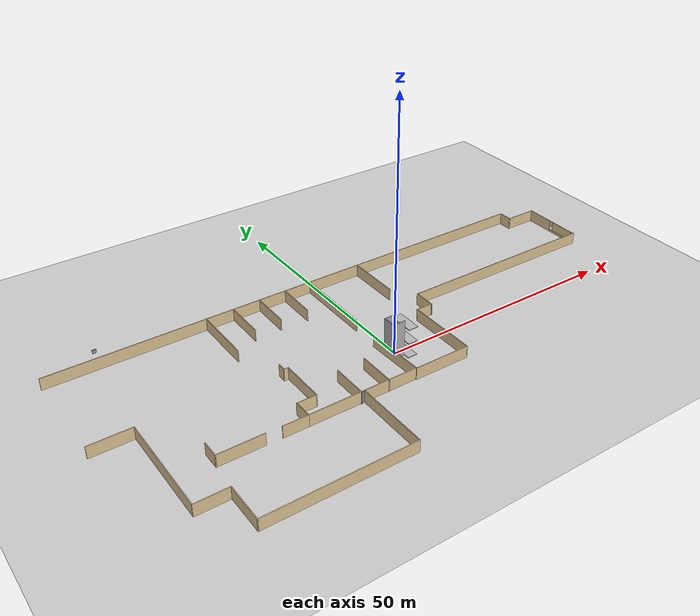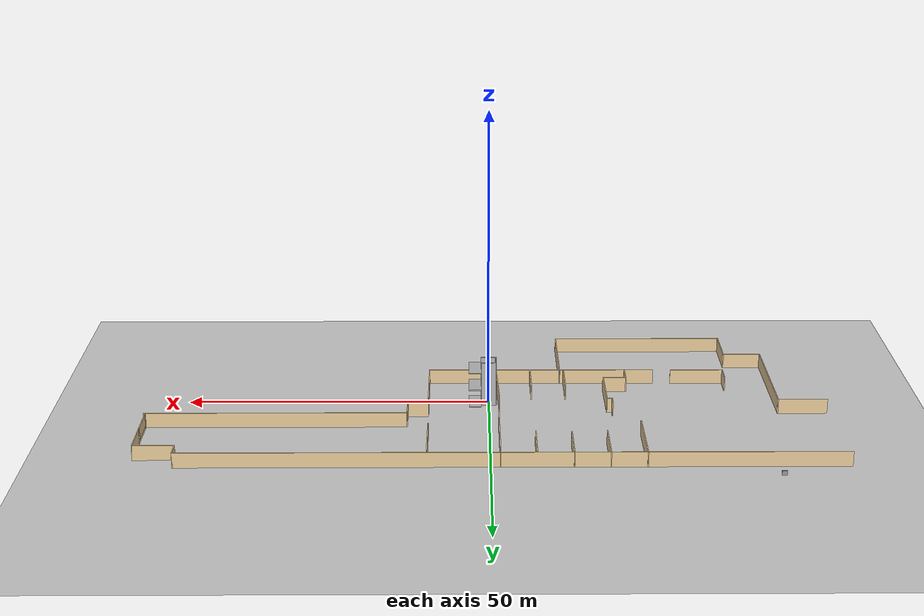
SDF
<sdf version="1.6">
 <world name="default">
  <light name="sun" type="directional">
   <pose>0 0 10 0 -0 0</pose>
   <diffuse>0.8 0.8 0.8 1</diffuse>
   <specular>0.2 0.2 0.2 1</specular>
   <attenuation>
    <range>1000</range>
    <constant>0.9</constant>
    <linear>0.01</linear>
    <quadratic>0.001</quadratic>
   </attenuation>
   <direction>-0.5 0.1 -0.9</direction>
  </light>
  <model name="ground_plane">
   <static>1</static>
   <link name="link">
    <collision name="collision">
     <geometry><plane><normal>0 0 1</normal><size>1000 1000</size></plane></geometry>
     <surface><friction><ode><mu>100</mu><mu2>50</mu2></ode></friction></surface>
    </collision>
    <visual name="visual">
     <cast_shadows>0</cast_shadows>
     <geometry><plane><normal>0 0 1</normal><size>1000 1000</size></plane></geometry>
     <material>
      <script><uri>file://media/materials/scripts/gazebo.material</uri><name>Gazebo/Grey</name></script>
     </material>
    </visual>
   </link>
  </model>
  <plugin name="elevator_event_plugin" filename="libSimEventsPlugin.so">
   <region><name>region1</name><volume><min>1.5 -1 0</min><max>2.5 1 1</max></volume></region>
   <region><name>region2</name><volume><min>1.5 -1 3</min><max>2.5 1 4</max></volume></region>
   <region><name>region3</name><volume><min>1.5 -1 6</min><max>2.5 1 7</max></volume></region>
   <event>
    <name>region1_event</name>
    <type>occupied</type>
    <region>region1</region>
    <topic>~/elevator</topic>
    <msg_data>0</msg_data>
   </event>
   <event>
    <name>region2_event</name>
    <type>occupied</type>
    <region>region2</region>
    <topic>~/elevator</topic>
    <msg_data>1</msg_data>
   </event>
   <event>
    <name>region3_event</name>
    <type>occupied</type>
    <region>region3</region>
    <topic>~/elevator</topic>
    <msg_data>2</msg_data>
   </event>
  </plugin>
  <model name="elevator">
   <pose>-0 0 0.075 -0 -0 -0</pose>
   <link name="link">
    <inertial>
     <mass>800</mass>
     <inertia><ixx>1</ixx><ixy>0</ixy><ixz>0</ixz><iyy>1</iyy><iyz>0</iyz><izz>1</izz></inertia>
    </inertial>
    <collision name="floor_collision"><geometry><box><size>2.25 2.25 0.15</size></box></geometry></collision>
    <visual name="floor_visual"><geometry><box><size>2.25 2.25 0.15</size></box></geometry></visual>
    <collision name="wall1_collision">
     <pose>1.0745 0.5725 1.125 0 -0 0</pose>
     <geometry><box><size>0.1 1.15 2.25</size></box></geometry>
    </collision>
    <visual name="wall1_visual">
     <pose>1.0745 0.5725 1.125 0 -0 0</pose>
     <geometry><box><size>0.1 1.15 2.25</size></box></geometry>
     <material><script><name>Gazebo/Red</name><uri>__default__</uri></script></material>
    </visual>
    <collision name="wall2_collision">
     <pose>1.0745 -1.0625 1.125 0 -0 0</pose>
     <geometry><box><size>0.1 0.125 2.25</size></box></geometry>
    </collision>
    <visual name="wall2_visual">
     <pose>1.0745 -1.0625 1.125 0 -0 0</pose>
     <geometry><box><size>0.1 0.125 2.25</size></box></geometry>
     <material><script><name>Gazebo/Red</name><uri>__default__</uri></script></material>
    </visual>
   </link>
   <link name="door">
    <pose>1.0745 -0.5 1.125 0 -0 0</pose>
    <collision name="collision"><geometry><box><size>0.08 1 2.25</size></box></geometry></collision>
    <visual name="visual"><geometry><box><size>0.08 1 2.25</size></box></geometry></visual>
    <inertial>
     <inertia><ixx>1</ixx><ixy>0</ixy><ixz>0</ixz><iyy>1</iyy><iyz>0</iyz><izz>1</izz></inertia>
     <mass>1</mass>
    </inertial>
   </link>
   <joint name="door" type="prismatic">
    <parent>link</parent>
    <child>door</child>
    <axis>
     <xyz>0 1 0</xyz>
     <limit><lower>0</lower><upper>1</upper><effort>10</effort></limit>
     <dynamics>
      <damping>2</damping>
      <spring_reference>0</spring_reference>
      <spring_stiffness>0</spring_stiffness>
     </dynamics>
     <use_parent_model_frame>0</use_parent_model_frame>
    </axis>
   </joint>
   <joint name="lift" type="prismatic">
    <parent>world</parent>
    <child>link</child>
    <axis>
     <xyz>0 0 1</xyz>
     <limit><lower>0</lower><upper>10</upper><effort>100000</effort></limit>
     <dynamics>
      <damping>50</damping>
      <spring_reference>0</spring_reference>
      <spring_stiffness>0</spring_stiffness>
     </dynamics>
     <use_parent_model_frame>0</use_parent_model_frame>
    </axis>
    <physics>
     <ode><implicit_spring_damper>1</implicit_spring_damper><limit><cfm>0</cfm><erp>0.2</erp></limit></ode>
    </physics>
   </joint>
   <plugin name="elevator_plugin" filename="libgazebo_ros_elevator.so">
    <lift_joint>elevator::lift</lift_joint>
    <door_joint>elevator::door</door_joint>
    <floor_height>3.075</floor_height>
    <door_wait_time>5</door_wait_time>
    <topic>elevator</topic>
   </plugin>
  </model>
  <model name="elevator_shaft">
   <static>1</static>
   <link name="link">
    <collision name="shaft_wall1_collision">
     <pose>0 1.25 3 0 -0 0</pose>
     <geometry><box><size>2.5 0.15 9</size></box></geometry>
    </collision>
    <visual name="shaft_wall1_visual">
     <pose>0 1.25 3 0 -0 0</pose>
     <geometry><box><size>2.5 0.15 9</size></box></geometry>
    </visual>
    <collision name="shaft_wall2_collision">
     <pose>0 -1.25 3 0 -0 0</pose>
     <geometry><box><size>2.5 0.15 9</size></box></geometry>
    </collision>
    <visual name="shaft_wall2_visual">
     <pose>0 -1.25 3 0 -0 0</pose>
     <geometry><box><size>2.5 0.15 9</size></box></geometry>
    </visual>
    <collision name="shaft_wall3_collision">
     <pose>-1.25 0 3 0 -0 0</pose>
     <geometry><box><size>0.15 2.7 9</size></box></geometry>
    </collision>
    <visual name="shaft_wall3_visual">
     <pose>-1.25 0 3 0 -0 0</pose>
     <geometry><box><size>0.15 2.7 9</size></box></geometry>
    </visual>
    <collision name="floor0_collision">
     <pose>1.19 0 0.075 0 -0 0</pose>
     <geometry><box><size>0.12 2.5 0.15</size></box></geometry>
    </collision>
    <visual name="floor0_visual">
     <pose>1.19 0 0.075 0 -0 0</pose>
     <geometry><box><size>0.12 2.5 0.15</size></box></geometry>
    </visual>
    <collision name="floor1_collision">
     <pose>1.19 0 3.075 0 -0 0</pose>
     <geometry><box><size>0.12 2.5 0.15</size></box></geometry>
    </collision>
    <visual name="floor1_visual">
     <pose>1.19 0 3.075 0 -0 0</pose>
     <geometry><box><size>0.12 2.5 0.15</size></box></geometry>
    </visual>
    <collision name="floor2_collision">
     <pose>1.19 0 6.075 0 -0 0</pose>
     <geometry><box><size>0.12 2.5 0.15</size></box></geometry>
    </collision>
    <visual name="floor2_visual">
     <pose>1.19 0 6.075 0 -0 0</pose>
     <geometry><box><size>0.12 2.5 0.15</size></box></geometry>
    </visual>
   </link>
  </model>
  <model name="floor0">
   <pose>2.25 0 0.075 0 -0 0</pose>
   <static>1</static>
   <link name="link">
    <collision name="floor_collision"><geometry><box><size>2 5 0.15</size></box></geometry></collision>
    <visual name="floor_visual"><geometry><box><size>2 5 0.15</size></box></geometry></visual>
   </link>
  </model>
  <model name="floor1">
   <pose>2.25 0 3.075 0 -0 0</pose>
   <static>1</static>
   <link name="link">
    <collision name="floor_collision"><geometry><box><size>2 5 0.15</size></box></geometry></collision>
    <visual name="floor_visual"><geometry><box><size>2 5 0.15</size></box></geometry></visual>
   </link>
  </model>
  <model name="floor2">
   <pose>2.25 0 6.075 0 -0 0</pose>
   <static>1</static>
   <link name="link">
    <collision name="floor_collision"><geometry><box><size>2 5 0.15</size></box></geometry></collision>
    <visual name="floor_visual"><geometry><box><size>2 5 0.15</size></box></geometry></visual>
   </link>
  </model>
  <gravity>0 0 -9.8</gravity>
  <magnetic_field>6e-06 2.3e-05 -4.2e-05</magnetic_field>
  <atmosphere type="adiabatic"/>
  <physics name="default_physics" default="0" type="ode">
   <max_step_size>0.001</max_step_size>
   <real_time_factor>1</real_time_factor>
   <real_time_update_rate>1000</real_time_update_rate>
  </physics>
  <scene><ambient>0.4 0.4 0.4 1</ambient><background>0.7 0.7 0.7 1</background><shadows>1</shadows></scene>
  <spherical_coordinates>
   <surface_model>EARTH_WGS84</surface_model>
   <latitude_deg>0</latitude_deg>
   <longitude_deg>0</longitude_deg>
   <elevation>0</elevation>
   <heading_deg>0</heading_deg>
  </spherical_coordinates>
  <model name="floor_2_woodlands_hospital">
   <pose>-0.010841 1.55364 0 0 -0 0</pose>
   <link name="Wall_10">
    <collision name="Wall_10_Collision">
     <geometry><box><size>12.2959 0.15 2.5</size></box></geometry>
     <pose>0 0 1.25 0 -0 0</pose>
    </collision>
    <visual name="Wall_10_Visual">
     <pose>0 0 1.25 0 -0 0</pose>
     <geometry><box><size>12.2959 0.15 2.5</size></box></geometry>
     <material>
      <script><uri>file://media/materials/scripts/gazebo.material</uri><name>Gazebo/Grey</name></script>
      <ambient>0.921569 0.807843 0.615686 1</ambient>
     </material>
     <meta><layer>0</layer></meta>
    </visual>
    <pose>-1.54225 -3.66367 0 0 -0 1.60595</pose>
   </link>
   <link name="Wall_12">
    <collision name="Wall_12_Collision">
     <geometry><box><size>11.25 0.15 2.5</size></box></geometry>
     <pose>0 0 1.25 0 -0 0</pose>
    </collision>
    <visual name="Wall_12_Visual">
     <pose>0 0 1.25 0 -0 0</pose>
     <geometry><box><size>11.25 0.15 2.5</size></box></geometry>
     <material>
      <script><uri>file://media/materials/scripts/gazebo.material</uri><name>Gazebo/Grey</name></script>
      <ambient>0.921569 0.807843 0.615686 1</ambient>
     </material>
     <meta><layer>0</layer></meta>
    </visual>
    <pose>-6.69931 -9.65977 0 0 -0 3.14159</pose>
   </link>
   <link name="Wall_13">
    <collision name="Wall_13_Collision">
     <geometry><box><size>15.25 0.15 2.5</size></box></geometry>
     <pose>0 0 1.25 0 -0 0</pose>
    </collision>
    <visual name="Wall_13_Visual">
     <pose>0 0 1.25 0 -0 0</pose>
     <geometry><box><size>15.25 0.15 2.5</size></box></geometry>
     <material>
      <script><uri>file://media/materials/scripts/gazebo.material</uri><name>Gazebo/Grey</name></script>
      <ambient>0.921569 0.807843 0.615686 1</ambient>
     </material>
     <meta><layer>0</layer></meta>
    </visual>
    <pose>-12.2493 -17.2098 0 0 -0 -1.5708</pose>
   </link>
   <link name="Wall_14">
    <collision name="Wall_14_Collision">
     <geometry><box><size>29.25 0.15 2.5</size></box></geometry>
     <pose>0 0 1.25 0 -0 0</pose>
    </collision>
    <visual name="Wall_14_Visual">
     <pose>0 0 1.25 0 -0 0</pose>
     <geometry><box><size>29.25 0.15 2.5</size></box></geometry>
     <material>
      <script><uri>file://media/materials/scripts/gazebo.material</uri><name>Gazebo/Grey</name></script>
      <ambient>0.921569 0.807843 0.615686 1</ambient>
     </material>
     <meta><layer>0</layer></meta>
    </visual>
    <pose>-26.7993 -24.7598 0 0 -0 3.14159</pose>
   </link>
   <link name="Wall_15">
    <collision name="Wall_15_Collision">
     <geometry><box><size>8 0.15 2.5</size></box></geometry>
     <pose>0 0 1.25 0 -0 0</pose>
    </collision>
    <visual name="Wall_15_Visual">
     <pose>0 0 1.25 0 -0 0</pose>
     <geometry><box><size>8 0.15 2.5</size></box></geometry>
     <material>
      <script><uri>file://media/materials/scripts/gazebo.material</uri><name>Gazebo/Grey</name></script>
      <ambient>0.921569 0.807843 0.615686 1</ambient>
     </material>
     <meta><layer>0</layer></meta>
    </visual>
    <pose>-41.3493 -20.8348 0 0 -0 1.5708</pose>
   </link>
   <link name="Wall_16">
    <collision name="Wall_16_Collision">
     <geometry><box><size>6.5 0.15 2.5</size></box></geometry>
     <pose>0 0 1.25 0 -0 0</pose>
    </collision>
    <visual name="Wall_16_Visual">
     <pose>0 0 1.25 0 -0 0</pose>
     <geometry><box><size>6.5 0.15 2.5</size></box></geometry>
     <material>
      <script><uri>file://media/materials/scripts/gazebo.material</uri><name>Gazebo/Grey</name></script>
      <ambient>0.921569 0.807843 0.615686 1</ambient>
     </material>
     <meta><layer>0</layer></meta>
    </visual>
    <pose>-44.5243 -16.9098 0 0 -0 3.14159</pose>
   </link>
   <link name="Wall_17">
    <collision name="Wall_17_Collision">
     <geometry><box><size>20.75 0.15 2.5</size></box></geometry>
     <pose>0 0 1.25 0 -0 0</pose>
    </collision>
    <visual name="Wall_17_Visual">
     <pose>0 0 1.25 0 -0 0</pose>
     <geometry><box><size>20.75 0.15 2.5</size></box></geometry>
     <material>
      <script><uri>file://media/materials/scripts/gazebo.material</uri><name>Gazebo/Grey</name></script>
      <ambient>0.921569 0.807843 0.615686 1</ambient>
     </material>
     <meta><layer>0</layer></meta>
    </visual>
    <pose>-47.6993 -6.60977 0 0 -0 1.5708</pose>
   </link>
   <link name="Wall_18">
    <collision name="Wall_18_Collision">
     <geometry><box><size>8.25 0.15 2.5</size></box></geometry>
     <pose>0 0 1.25 0 -0 0</pose>
    </collision>
    <visual name="Wall_18_Visual">
     <pose>0 0 1.25 0 -0 0</pose>
     <geometry><box><size>8.25 0.15 2.5</size></box></geometry>
     <material>
      <script><uri>file://media/materials/scripts/gazebo.material</uri><name>Gazebo/Grey</name></script>
      <ambient>0.921569 0.807843 0.615686 1</ambient>
     </material>
     <meta><layer>0</layer></meta>
    </visual>
    <pose>-51.7493 3.69023 0 0 -0 3.14159</pose>
   </link>
   <link name="Wall_20">
    <collision name="Wall_20_Collision">
     <geometry><box><size>7.5 0.15 2.5</size></box></geometry>
     <pose>0 0 1.25 0 -0 0</pose>
    </collision>
    <visual name="Wall_20_Visual">
     <pose>0 0 1.25 0 -0 0</pose>
     <geometry><box><size>7.5 0.15 2.5</size></box></geometry>
     <material>
      <script><uri>file://media/materials/scripts/gazebo.material</uri><name>Gazebo/Grey</name></script>
      <ambient>0.921569 0.807843 0.615686 1</ambient>
     </material>
     <meta><layer>0</layer></meta>
    </visual>
    <pose>-7.17838 -6.02053 0 0 -0 -1.5708</pose>
   </link>
   <link name="Wall_22">
    <collision name="Wall_22_Collision">
     <geometry><box><size>7.5 0.15 2.5</size></box></geometry>
     <pose>0 0 1.25 0 -0 0</pose>
    </collision>
    <visual name="Wall_22_Visual">
     <pose>0 0 1.25 0 -0 0</pose>
     <geometry><box><size>7.5 0.15 2.5</size></box></geometry>
     <material>
      <script><uri>file://media/materials/scripts/gazebo.material</uri><name>Gazebo/Grey</name></script>
      <ambient>0.921569 0.807843 0.615686 1</ambient>
     </material>
     <meta><layer>0</layer></meta>
    </visual>
    <pose>-12.9097 -6.16204 0 0 -0 -1.5708</pose>
   </link>
   <link name="Wall_23">
    <collision name="Wall_23_Collision">
     <geometry><box><size>0.833767 0.15 2.5</size></box></geometry>
     <pose>0 0 1.25 0 -0 0</pose>
    </collision>
    <visual name="Wall_23_Visual">
     <pose>0 0 1.25 0 -0 0</pose>
     <geometry><box><size>0.833767 0.15 2.5</size></box></geometry>
     <material>
      <script><uri>file://media/materials/scripts/gazebo.material</uri><name>Gazebo/Grey</name></script>
      <ambient>1 1 1 1</ambient>
     </material>
     <meta><layer>0</layer></meta>
    </visual>
    <pose>-12.5795 -9.74841 0 0 -0 0.262245</pose>
   </link>
   <link name="Wall_24">
    <collision name="Wall_24_Collision">
     <geometry><box><size>11.25 0.15 2.5</size></box></geometry>
     <pose>0 0 1.25 0 -0 0</pose>
    </collision>
    <visual name="Wall_24_Visual">
     <pose>0 0 1.25 0 -0 0</pose>
     <geometry><box><size>11.25 0.15 2.5</size></box></geometry>
     <material>
      <script><uri>file://media/materials/scripts/gazebo.material</uri><name>Gazebo/Grey</name></script>
      <ambient>0.921569 0.807843 0.615686 1</ambient>
     </material>
     <meta><layer>0</layer></meta>
    </visual>
    <pose>-17.7993 -9.65977 0 0 -0 3.14159</pose>
   </link>
   <link name="Wall_25">
    <collision name="Wall_25_Collision">
     <geometry><box><size>3.75 0.15 2.5</size></box></geometry>
     <pose>0 0 1.25 0 -0 0</pose>
    </collision>
    <visual name="Wall_25_Visual">
     <pose>0 0 1.25 0 -0 0</pose>
     <geometry><box><size>3.75 0.15 2.5</size></box></geometry>
     <material>
      <script><uri>file://media/materials/scripts/gazebo.material</uri><name>Gazebo/Grey</name></script>
      <ambient>0.921569 0.807843 0.615686 1</ambient>
     </material>
     <meta><layer>0</layer></meta>
    </visual>
    <pose>-23.3493 -7.85977 0 0 -0 1.5708</pose>
   </link>
   <link name="Wall_26">
    <collision name="Wall_26_Collision">
     <geometry><box><size>4 0.15 2.5</size></box></geometry>
     <pose>0 0 1.25 0 -0 0</pose>
    </collision>
    <visual name="Wall_26_Visual">
     <pose>0 0 1.25 0 -0 0</pose>
     <geometry><box><size>4 0.15 2.5</size></box></geometry>
     <material>
      <script><uri>file://media/materials/scripts/gazebo.material</uri><name>Gazebo/Grey</name></script>
      <ambient>0.921569 0.807843 0.615686 1</ambient>
     </material>
     <meta><layer>0</layer></meta>
    </visual>
    <pose>-21.4243 -6.05977 0 0 -0 0</pose>
   </link>
   <link name="Wall_27">
    <collision name="Wall_27_Collision">
     <geometry><box><size>9.25 0.15 2.5</size></box></geometry>
     <pose>0 0 1.25 0 -0 0</pose>
    </collision>
    <visual name="Wall_27_Visual">
     <pose>0 0 1.25 0 -0 0</pose>
     <geometry><box><size>9.25 0.15 2.5</size></box></geometry>
     <material>
      <script><uri>file://media/materials/scripts/gazebo.material</uri><name>Gazebo/Grey</name></script>
      <ambient>0.921569 0.807843 0.615686 1</ambient>
     </material>
     <meta><layer>0</layer></meta>
    </visual>
    <pose>-19.4993 -1.50977 0 0 -0 1.5708</pose>
   </link>
   <link name="Wall_28">
    <collision name="Wall_28_Collision">
     <geometry><box><size>1 0.15 2.5</size></box></geometry>
     <pose>0 0 1.25 0 -0 0</pose>
    </collision>
    <visual name="Wall_28_Visual">
     <pose>0 0 1.25 0 -0 0</pose>
     <geometry><box><size>1 0.15 2.5</size></box></geometry>
     <material>
      <script><uri>file://media/materials/scripts/gazebo.material</uri><name>Gazebo/Grey</name></script>
      <ambient>0.921569 0.807843 0.615686 1</ambient>
     </material>
     <meta><layer>0</layer></meta>
    </visual>
    <pose>-19.9243 3.04023 0 0 -0 3.14159</pose>
   </link>
   <link name="Wall_29">
    <collision name="Wall_29_Collision">
     <geometry><box><size>1.75 0.15 2.5</size></box></geometry>
     <pose>0 0 1.25 0 -0 0</pose>
    </collision>
    <visual name="Wall_29_Visual">
     <pose>0 0 1.25 0 -0 0</pose>
     <geometry><box><size>1.75 0.15 2.5</size></box></geometry>
     <material>
      <script><uri>file://media/materials/scripts/gazebo.material</uri><name>Gazebo/Grey</name></script>
      <ambient>0.921569 0.807843 0.615686 1</ambient>
     </material>
     <meta><layer>0</layer></meta>
    </visual>
    <pose>-20.3493 3.84023 0 0 -0 1.5708</pose>
   </link>
   <link name="Wall_32">
    <collision name="Wall_32_Collision">
     <geometry><box><size>5 0.15 2.5</size></box></geometry>
     <pose>0 0 1.25 0 -0 0</pose>
    </collision>
    <visual name="Wall_32_Visual">
     <pose>0 0 1.25 0 -0 0</pose>
     <geometry><box><size>5 0.15 2.5</size></box></geometry>
     <material>
      <script><uri>file://media/materials/scripts/gazebo.material</uri><name>Gazebo/Grey</name></script>
      <ambient>0.921569 0.807843 0.615686 1</ambient>
     </material>
     <meta><layer>0</layer></meta>
    </visual>
    <pose>-25.7743 -9.65977 0 0 -0 3.14159</pose>
   </link>
   <link name="Wall_34">
    <collision name="Wall_34_Collision">
     <geometry><box><size>9 0.15 2.5</size></box></geometry>
     <pose>0 0 1.25 0 -0 0</pose>
    </collision>
    <visual name="Wall_34_Visual">
     <pose>0 0 1.25 0 -0 0</pose>
     <geometry><box><size>9 0.15 2.5</size></box></geometry>
     <material>
      <script><uri>file://media/materials/scripts/gazebo.material</uri><name>Gazebo/Grey</name></script>
      <ambient>0.921569 0.807843 0.615686 1</ambient>
     </material>
     <meta><layer>0</layer></meta>
    </visual>
    <pose>-35.747 -9.54708 0 0 -0 3.14159</pose>
   </link>
   <link name="Wall_35">
    <collision name="Wall_35_Collision">
     <geometry><box><size>3.5 0.15 2.5</size></box></geometry>
     <pose>0 0 1.25 0 -0 0</pose>
    </collision>
    <visual name="Wall_35_Visual">
     <pose>0 0 1.25 0 -0 0</pose>
     <geometry><box><size>3.5 0.15 2.5</size></box></geometry>
     <material>
      <script><uri>file://media/materials/scripts/gazebo.material</uri><name>Gazebo/Grey</name></script>
      <ambient>0.921569 0.807843 0.615686 1</ambient>
     </material>
     <meta><layer>0</layer></meta>
    </visual>
    <pose>-40.172 -7.87208 0 0 -0 1.5708</pose>
   </link>
   <link name="Wall_37">
    <collision name="Wall_37_Collision">
     <geometry><box><size>105.25 0.15 2.5</size></box></geometry>
     <pose>0 0 1.25 0 -0 0</pose>
    </collision>
    <visual name="Wall_37_Visual">
     <pose>0 0 1.25 0 -0 0</pose>
     <geometry><box><size>105.25 0.15 2.5</size></box></geometry>
     <material>
      <script><uri>file://media/materials/scripts/gazebo.material</uri><name>Gazebo/Grey</name></script>
      <ambient>0.921569 0.807843 0.615686 1</ambient>
     </material>
     <meta><layer>0</layer></meta>
    </visual>
    <pose>-3.41503 24.597 0 0 -0 0</pose>
   </link>
   <link name="Wall_38">
    <collision name="Wall_38_Collision">
     <geometry><box><size>3 0.15 2.5</size></box></geometry>
     <pose>0 0 1.25 0 -0 0</pose>
    </collision>
    <visual name="Wall_38_Visual">
     <pose>0 0 1.25 0 -0 0</pose>
     <geometry><box><size>3 0.15 2.5</size></box></geometry>
     <material>
      <script><uri>file://media/materials/scripts/gazebo.material</uri><name>Gazebo/Grey</name></script>
      <ambient>0.921569 0.807843 0.615686 1</ambient>
     </material>
     <meta><layer>0</layer></meta>
    </visual>
    <pose>49.135 23.172 0 0 -0 -1.5708</pose>
   </link>
   <link name="Wall_39">
    <collision name="Wall_39_Collision">
     <geometry><box><size>6.75 0.15 2.5</size></box></geometry>
     <pose>0 0 1.25 0 -0 0</pose>
    </collision>
    <visual name="Wall_39_Visual">
     <pose>0 0 1.25 0 -0 0</pose>
     <geometry><box><size>6.75 0.15 2.5</size></box></geometry>
     <material>
      <script><uri>file://media/materials/scripts/gazebo.material</uri><name>Gazebo/Grey</name></script>
      <ambient>0.921569 0.807843 0.615686 1</ambient>
     </material>
     <meta><layer>0</layer></meta>
    </visual>
    <pose>52.435 21.747 0 0 -0 0</pose>
   </link>
   <link name="Wall_41">
    <collision name="Wall_41_Collision">
     <geometry><box><size>12.5 0.15 2.5</size></box></geometry>
     <pose>0 0 1.25 0 -0 0</pose>
    </collision>
    <visual name="Wall_41_Visual">
     <pose>0 0 1.25 0 -0 0</pose>
     <geometry><box><size>12.5 0.15 2.5</size></box></geometry>
     <material>
      <script><uri>file://media/materials/scripts/gazebo.material</uri><name>Gazebo/Grey</name></script>
      <ambient>0.921569 0.807843 0.615686 1</ambient>
     </material>
     <meta><layer>0</layer></meta>
    </visual>
    <pose>-24.3119 18.5848 0 0 -0 -1.5708</pose>
   </link>
   <link name="Wall_43">
    <collision name="Wall_43_Collision">
     <geometry><box><size>8.5 0.15 2.5</size></box></geometry>
     <pose>0 0 1.25 0 -0 0</pose>
    </collision>
    <visual name="Wall_43_Visual">
     <pose>0 0 1.25 0 -0 0</pose>
     <geometry><box><size>8.5 0.15 2.5</size></box></geometry>
     <material>
      <script><uri>file://media/materials/scripts/gazebo.material</uri><name>Gazebo/Grey</name></script>
      <ambient>0.921569 0.807843 0.615686 1</ambient>
     </material>
     <meta><layer>0</layer></meta>
    </visual>
    <pose>-18.6159 20.5034 0 0 -0 -1.5708</pose>
   </link>
   <link name="Wall_46">
    <collision name="Wall_46_Collision">
     <geometry><box><size>8.25 0.15 2.5</size></box></geometry>
     <pose>0 0 1.25 0 -0 0</pose>
    </collision>
    <visual name="Wall_46_Visual">
     <pose>0 0 1.25 0 -0 0</pose>
     <geometry><box><size>8.25 0.15 2.5</size></box></geometry>
     <material>
      <script><uri>file://media/materials/scripts/gazebo.material</uri><name>Gazebo/Grey</name></script>
      <ambient>0.921569 0.807843 0.615686 1</ambient>
     </material>
     <meta><layer>0</layer></meta>
    </visual>
    <pose>-12.9664 20.6429 0 0 -0 -1.5708</pose>
   </link>
   <link name="Wall_48">
    <collision name="Wall_48_Collision">
     <geometry><box><size>8.25 0.15 2.5</size></box></geometry>
     <pose>0 0 1.25 0 -0 0</pose>
    </collision>
    <visual name="Wall_48_Visual">
     <pose>0 0 1.25 0 -0 0</pose>
     <geometry><box><size>8.25 0.15 2.5</size></box></geometry>
     <material>
      <script><uri>file://media/materials/scripts/gazebo.material</uri><name>Gazebo/Grey</name></script>
      <ambient>0.921569 0.807843 0.615686 1</ambient>
     </material>
     <meta><layer>0</layer></meta>
    </visual>
    <pose>-7.2418 20.4854 0 0 -0 -1.5708</pose>
   </link>
   <link name="Wall_5">
    <collision name="Wall_5_Collision">
     <geometry><box><size>42.6178 0.15 2.5</size></box></geometry>
     <pose>0 0 1.25 0 -0 0</pose>
    </collision>
    <visual name="Wall_5_Visual">
     <pose>0 0 1.25 0 -0 0</pose>
     <geometry><box><size>42.6178 0.15 2.5</size></box></geometry>
     <material>
      <script><uri>file://media/materials/scripts/gazebo.material</uri><name>Gazebo/Grey</name></script>
      <ambient>0.921569 0.807843 0.615686 1</ambient>
     </material>
     <meta><layer>0</layer></meta>
    </visual>
    <pose>34.7311 8.94599 0 0 -0 3.14159</pose>
   </link>
   <link name="Wall_50">
    <collision name="Wall_50_Collision">
     <geometry><box><size>16.5 0.15 2.5</size></box></geometry>
     <pose>0 0 1.25 0 -0 0</pose>
    </collision>
    <visual name="Wall_50_Visual">
     <pose>0 0 1.25 0 -0 0</pose>
     <geometry><box><size>16.5 0.15 2.5</size></box></geometry>
     <material>
      <script><uri>file://media/materials/scripts/gazebo.material</uri><name>Gazebo/Grey</name></script>
      <ambient>0.921569 0.807843 0.615686 1</ambient>
     </material>
     <meta><layer>0</layer></meta>
    </visual>
    <pose>-1.54909 16.4842 0 0 -0 -1.5708</pose>
   </link>
   <link name="Wall_54">
    <collision name="Wall_54_Collision">
     <geometry><box><size>11.25 0.15 2.5</size></box></geometry>
     <pose>0 0 1.25 0 -0 0</pose>
    </collision>
    <visual name="Wall_54_Visual">
     <pose>0 0 1.25 0 -0 0</pose>
     <geometry><box><size>11.25 0.15 2.5</size></box></geometry>
     <material>
      <script><uri>file://media/materials/scripts/gazebo.material</uri><name>Gazebo/Grey</name></script>
      <ambient>0.921569 0.807843 0.615686 1</ambient>
     </material>
     <meta><layer>0</layer></meta>
    </visual>
    <pose>9.89001 18.9367 0 0 -0 -1.5708</pose>
   </link>
   <link name="Wall_56">
    <pose>55.735 15.697 0 0 -0 -1.5708</pose>
    <visual name="Wall_56_Visual_0">
     <pose>-3.10561 0 1.25 0 -0 0</pose>
     <geometry><box><size>6.03878 0.15 2.5</size></box></geometry>
     <material>
      <script><uri>file://media/materials/scripts/gazebo.material</uri><name>Gazebo/Grey</name></script>
      <ambient>0.921569 0.807843 0.615686 1</ambient>
     </material>
     <meta><layer>0</layer></meta>
    </visual>
    <collision name="Wall_56_Collision_0">
     <geometry><box><size>6.03878 0.15 2.5</size></box></geometry>
     <pose>-3.10561 0 1.25 0 -0 0</pose>
    </collision>
    <visual name="Wall_56_Visual_1">
     <pose>3.01939 0 0.25 0 -0 0</pose>
     <geometry><box><size>6.21122 0.15 0.5</size></box></geometry>
     <material>
      <script><uri>file://media/materials/scripts/gazebo.material</uri><name>Gazebo/Grey</name></script>
      <ambient>0.921569 0.807843 0.615686 1</ambient>
     </material>
     <meta><layer>0</layer></meta>
    </visual>
    <collision name="Wall_56_Collision_1">
     <geometry><box><size>6.21122 0.15 0.5</size></box></geometry>
     <pose>3.01939 0 0.25 0 -0 0</pose>
    </collision>
    <visual name="Wall_56_Visual_2">
     <pose>3.41939 0 1.5 0 -0 0</pose>
     <geometry><box><size>5.41122 0.15 2</size></box></geometry>
     <material>
      <script><uri>file://media/materials/scripts/gazebo.material</uri><name>Gazebo/Grey</name></script>
      <ambient>0.921569 0.807843 0.615686 1</ambient>
     </material>
     <meta><layer>0</layer></meta>
    </visual>
    <collision name="Wall_56_Collision_2">
     <geometry><box><size>5.41122 0.15 2</size></box></geometry>
     <pose>3.41939 0 1.5 0 -0 0</pose>
    </collision>
    <visual name="Wall_56_Visual_3">
     <pose>0.313778 0 1.9 0 -0 0</pose>
     <geometry><box><size>0.8 0.15 1.2</size></box></geometry>
     <material>
      <script><uri>file://media/materials/scripts/gazebo.material</uri><name>Gazebo/Grey</name></script>
      <ambient>0.921569 0.807843 0.615686 1</ambient>
     </material>
     <meta><layer>0</layer></meta>
    </visual>
    <collision name="Wall_56_Collision_3">
     <geometry><box><size>0.8 0.15 1.2</size></box></geometry>
     <pose>0.313778 0 1.9 0 -0 0</pose>
    </collision>
   </link>
   <link name="Wall_58">
    <collision name="Wall_58_Collision">
     <geometry><box><size>0.75 0.15 2.5</size></box></geometry>
     <pose>0 0 1.25 0 -0 0</pose>
    </collision>
    <visual name="Wall_58_Visual">
     <pose>0 0 1.25 0 -0 0</pose>
     <geometry><box><size>0.75 0.15 2.5</size></box></geometry>
     <material>
      <script><uri>file://media/materials/scripts/gazebo.material</uri><name>Gazebo/Grey</name></script>
      <ambient>0.921569 0.807843 0.615686 1</ambient>
     </material>
     <meta><layer>0</layer></meta>
    </visual>
    <pose>55.735 9.34703 0 0 -0 -1.5708</pose>
   </link>
   <link name="Wall_6">
    <collision name="Wall_6_Collision">
     <geometry><box><size>4.57305 0.15 2.5</size></box></geometry>
     <pose>0 0 1.25 0 -0 0</pose>
    </collision>
    <visual name="Wall_6_Visual">
     <pose>0 0 1.25 0 -0 0</pose>
     <geometry><box><size>4.57305 0.15 2.5</size></box></geometry>
     <material>
      <script><uri>file://media/materials/scripts/gazebo.material</uri><name>Gazebo/Grey</name></script>
      <ambient>0.921569 0.807843 0.615686 1</ambient>
     </material>
     <meta><layer>0</layer></meta>
    </visual>
    <pose>13.3549 6.73447 0 0 -0 -1.5708</pose>
   </link>
   <link name="Wall_7">
    <collision name="Wall_7_Collision">
     <geometry><box><size>3.51213 0.15 2.5</size></box></geometry>
     <pose>0 0 1.25 0 -0 0</pose>
    </collision>
    <visual name="Wall_7_Visual">
     <pose>0 0 1.25 0 -0 0</pose>
     <geometry><box><size>3.51213 0.15 2.5</size></box></geometry>
     <material>
      <script><uri>file://media/materials/scripts/gazebo.material</uri><name>Gazebo/Grey</name></script>
      <ambient>0.921569 0.807843 0.615686 1</ambient>
     </material>
     <meta><layer>0</layer></meta>
    </visual>
    <pose>11.6738 4.66526 0 0 -0 3.14159</pose>
   </link>
   <link name="Wall_8">
    <collision name="Wall_8_Collision">
     <geometry><box><size>14.5789 0.15 2.5</size></box></geometry>
     <pose>0 0 1.25 0 -0 0</pose>
    </collision>
    <visual name="Wall_8_Visual">
     <pose>0 0 1.25 0 -0 0</pose>
     <geometry><box><size>14.5789 0.15 2.5</size></box></geometry>
     <material>
      <script><uri>file://media/materials/scripts/gazebo.material</uri><name>Gazebo/Grey</name></script>
      <ambient>0.921569 0.807843 0.615686 1</ambient>
     </material>
     <meta><layer>0</layer></meta>
    </visual>
    <pose>10.007 -2.58961 0 0 -0 -1.56882</pose>
   </link>
   <link name="Wall_9">
    <collision name="Wall_9_Collision">
     <geometry><box><size>11.5 0.15 2.5</size></box></geometry>
     <pose>0 0 1.25 0 -0 0</pose>
    </collision>
    <visual name="Wall_9_Visual">
     <pose>0 0 1.25 0 -0 0</pose>
     <geometry><box><size>11.5 0.15 2.5</size></box></geometry>
     <material>
      <script><uri>file://media/materials/scripts/gazebo.material</uri><name>Gazebo/Grey</name></script>
      <ambient>0.921569 0.807843 0.615686 1</ambient>
     </material>
     <meta><layer>0</layer></meta>
    </visual>
    <pose>4.34623 -9.80403 0 0 -0 3.14159</pose>
   </link>
   <link name="Window_1">
    <collision name="Window_1_Collision">
     <geometry><box><size>0.8 0.17 0.8</size></box></geometry>
     <pose>0 0 0.4 0 -0 0</pose>
    </collision>
    <visual name="Window_1_Visual">
     <pose>0 0 0.4 0 -0 0</pose>
     <geometry><box><size>0.8 0.17 0.8</size></box></geometry>
     <material>
      <script><uri>file://media/materials/scripts/gazebo.material</uri><name>Gazebo/Grey</name></script>
     </material>
    </visual>
    <pose>-44.7044 28.9718 0.5 0 -0 0</pose>
   </link>
   <static>1</static>
  </model>
 </world>
</sdf>
